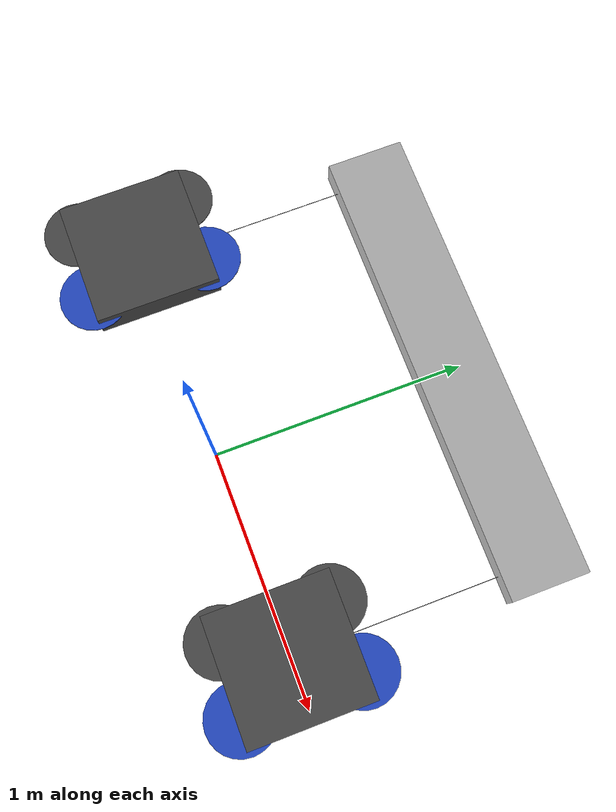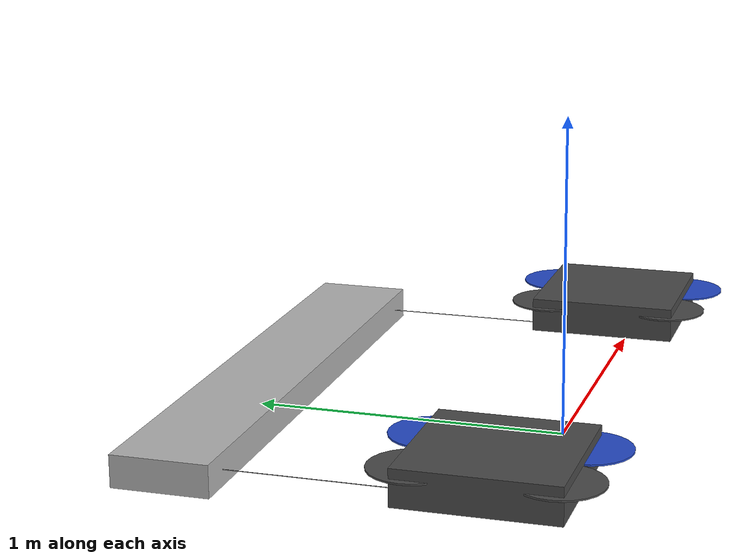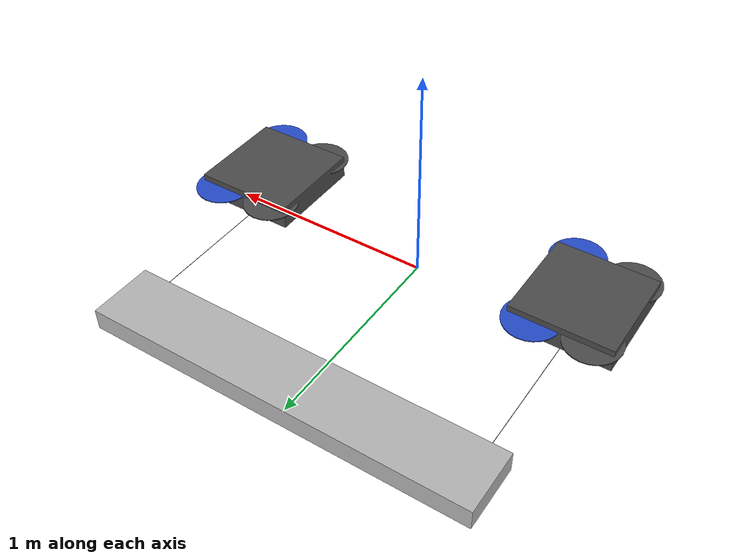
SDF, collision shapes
<sdf version='1.6'>
  <model name='multi_iris'>
    <model name='iris_0'>
      <pose> 0.8 0 0.2 0 -0 0</pose>
      <link name='base_link'>
        <pose frame=''>0 0 0 0 -0 0</pose>
        <inertial>
          <pose frame=''>0 0 0 0 -0 0</pose>
          <mass>1.5</mass>
          <inertia>
            <ixx>0.029125</ixx>
            <ixy>0</ixy>
            <ixz>0</ixz>
            <iyy>0.029125</iyy>
            <iyz>0</iyz>
            <izz>0.055225</izz>
          </inertia>
        </inertial>
        <collision name='base_link_inertia_collision'>
          <pose frame=''>0 0 0 0 -0 0</pose>
          <geometry>
            <box>
              <size>0.47 0.47 0.11</size>
            </box>
          </geometry>
          <surface>
            <contact>
              <ode>
                <min_depth>0.001</min_depth>
                <max_vel>0</max_vel>
              </ode>
            </contact>
            <friction>
              <ode/>
            </friction>
          </surface>
        </collision>
        <visual name='base_link_inertia_visual'>
          <pose frame=''>0 0 0 0 -0 0</pose>
          <geometry>
            <mesh>
              <scale>1 1 1</scale>
              <uri>model://rotors_description/meshes/iris.stl</uri>
            </mesh>
          </geometry>
          <material>
            <script>
              <name>Gazebo/DarkGrey</name>
              <uri>file://media/materials/scripts/gazebo.material</uri>
            </script>
          </material>
        </visual>
        <gravity>1</gravity>
        <velocity_decay/>
      </link>
      <link name='/imu_link'>
        <pose frame=''>0 0 0 0 -0 0</pose>
        <inertial>
          <pose frame=''>0 0 0 0 -0 0</pose>
          <mass>0.015</mass>
          <inertia>
            <ixx>1e-05</ixx>
            <ixy>0</ixy>
            <ixz>0</ixz>
            <iyy>1e-05</iyy>
            <iyz>0</iyz>
            <izz>1e-05</izz>
          </inertia>
        </inertial>
      </link>
      <joint name='/imu_joint' type='revolute'>
        <child>/imu_link</child>
        <parent>base_link</parent>
        <axis>
          <xyz>1 0 0</xyz>
          <limit>
            <lower>0</lower>
            <upper>0</upper>
            <effort>0</effort>
            <velocity>0</velocity>
          </limit>
          <dynamics>
            <spring_reference>0</spring_reference>
            <spring_stiffness>0</spring_stiffness>
          </dynamics>
          <use_parent_model_frame>1</use_parent_model_frame>
        </axis>
      </joint>
      <link name='rotor_0'>
        <pose frame=''>0.13 -0.22 0.023 0 -0 0</pose>
        <inertial>
          <pose frame=''>0 0 0 0 -0 0</pose>
          <mass>0.005</mass>
          <inertia>
            <ixx>9.75e-07</ixx>
            <ixy>0</ixy>
            <ixz>0</ixz>
            <iyy>0.000273104</iyy>
            <iyz>0</iyz>
            <izz>0.000274004</izz>
          </inertia>
        </inertial>
        <collision name='rotor_0_collision'>
          <pose frame=''>0 0 0 0 -0 0</pose>
          <geometry>
            <cylinder>
              <length>0.005</length>
              <radius>0.128</radius>
            </cylinder>
          </geometry>
          <surface>
            <contact>
              <ode/>
            </contact>
            <friction>
              <ode/>
            </friction>
          </surface>
        </collision>
        <visual name='rotor_0_visual'>
          <pose frame=''>0 0 0 0 -0 0</pose>
          <geometry>
            <mesh>
              <scale>1 1 1</scale>
              <uri>model://rotors_description/meshes/iris_prop_ccw.dae</uri>
            </mesh>
          </geometry>
          <material>
            <script>
              <name>Gazebo/Blue</name>
              <uri>file://media/materials/scripts/gazebo.material</uri>
            </script>
          </material>
        </visual>
        <gravity>1</gravity>
        <velocity_decay/>
      </link>
      <joint name='rotor_0_joint' type='revolute'>
        <child>rotor_0</child>
        <parent>base_link</parent>
        <axis>
          <xyz>0 0 1</xyz>
          <limit>
            <lower>-1e+16</lower>
            <upper>1e+16</upper>
          </limit>
          <dynamics>
            <spring_reference>0</spring_reference>
            <spring_stiffness>0</spring_stiffness>
          </dynamics>
          <use_parent_model_frame>1</use_parent_model_frame>
        </axis>
      </joint>
      <link name='rotor_1'>
        <pose frame=''>-0.13 0.2 0.023 0 -0 0</pose>
        <inertial>
          <pose frame=''>0 0 0 0 -0 0</pose>
          <mass>0.005</mass>
          <inertia>
            <ixx>9.75e-07</ixx>
            <ixy>0</ixy>
            <ixz>0</ixz>
            <iyy>0.000273104</iyy>
            <iyz>0</iyz>
            <izz>0.000274004</izz>
          </inertia>
        </inertial>
        <collision name='rotor_1_collision'>
          <pose frame=''>0 0 0 0 -0 0</pose>
          <geometry>
            <cylinder>
              <length>0.005</length>
              <radius>0.128</radius>
            </cylinder>
          </geometry>
          <surface>
            <contact>
              <ode/>
            </contact>
            <friction>
              <ode/>
            </friction>
          </surface>
        </collision>
        <visual name='rotor_1_visual'>
          <pose frame=''>0 0 0 0 -0 0</pose>
          <geometry>
            <mesh>
              <scale>1 1 1</scale>
              <uri>model://rotors_description/meshes/iris_prop_ccw.dae</uri>
            </mesh>
          </geometry>
          <material>
            <script>
              <name>Gazebo/DarkGrey</name>
              <uri>file://media/materials/scripts/gazebo.material</uri>
            </script>
          </material>
        </visual>
        <gravity>1</gravity>
        <velocity_decay/>
      </link>
      <joint name='rotor_1_joint' type='revolute'>
        <child>rotor_1</child>
        <parent>base_link</parent>
        <axis>
          <xyz>0 0 1</xyz>
          <limit>
            <lower>-1e+16</lower>
            <upper>1e+16</upper>
          </limit>
          <dynamics>
            <spring_reference>0</spring_reference>
            <spring_stiffness>0</spring_stiffness>
          </dynamics>
          <use_parent_model_frame>1</use_parent_model_frame>
        </axis>
      </joint>
      <link name='rotor_2'>
        <pose frame=''>0.13 0.22 0.023 0 -0 0</pose>
        <inertial>
          <pose frame=''>0 0 0 0 -0 0</pose>
          <mass>0.005</mass>
          <inertia>
            <ixx>9.75e-07</ixx>
            <ixy>0</ixy>
            <ixz>0</ixz>
            <iyy>0.000273104</iyy>
            <iyz>0</iyz>
            <izz>0.000274004</izz>
          </inertia>
        </inertial>
        <collision name='rotor_2_collision'>
          <pose frame=''>0 0 0 0 -0 0</pose>
          <geometry>
            <cylinder>
              <length>0.005</length>
              <radius>0.128</radius>
            </cylinder>
          </geometry>
          <surface>
            <contact>
              <ode/>
            </contact>
            <friction>
              <ode/>
            </friction>
          </surface>
        </collision>
        <visual name='rotor_2_visual'>
          <pose frame=''>0 0 0 0 -0 0</pose>
          <geometry>
            <mesh>
              <scale>1 1 1</scale>
              <uri>model://rotors_description/meshes/iris_prop_cw.dae</uri>
            </mesh>
          </geometry>
          <material>
            <script>
              <name>Gazebo/Blue</name>
              <uri>file://media/materials/scripts/gazebo.material</uri>
            </script>
          </material>
        </visual>
        <gravity>1</gravity>
        <velocity_decay/>
      </link>
      <joint name='rotor_2_joint' type='revolute'>
        <child>rotor_2</child>
        <parent>base_link</parent>
        <axis>
          <xyz>0 0 1</xyz>
          <limit>
            <lower>-1e+16</lower>
            <upper>1e+16</upper>
          </limit>
          <dynamics>
            <spring_reference>0</spring_reference>
            <spring_stiffness>0</spring_stiffness>
          </dynamics>
          <use_parent_model_frame>1</use_parent_model_frame>
        </axis>
      </joint>
      <link name='rotor_3'>
        <pose frame=''>-0.13 -0.2 0.023 0 -0 0</pose>
        <inertial>
          <pose frame=''>0 0 0 0 -0 0</pose>
          <mass>0.005</mass>
          <inertia>
            <ixx>9.75e-07</ixx>
            <ixy>0</ixy>
            <ixz>0</ixz>
            <iyy>0.000273104</iyy>
            <iyz>0</iyz>
            <izz>0.000274004</izz>
          </inertia>
        </inertial>
        <collision name='rotor_3_collision'>
          <pose frame=''>0 0 0 0 -0 0</pose>
          <geometry>
            <cylinder>
              <length>0.005</length>
              <radius>0.128</radius>
            </cylinder>
          </geometry>
          <surface>
            <contact>
              <ode/>
            </contact>
            <friction>
              <ode/>
            </friction>
          </surface>
        </collision>
        <visual name='rotor_3_visual'>
          <pose frame=''>0 0 0 0 -0 0</pose>
          <geometry>
            <mesh>
              <scale>1 1 1</scale>
              <uri>model://rotors_description/meshes/iris_prop_cw.dae</uri>
            </mesh>
          </geometry>
          <material>
            <script>
              <name>Gazebo/DarkGrey</name>
              <uri>file://media/materials/scripts/gazebo.material</uri>
            </script>
          </material>
        </visual>
        <gravity>1</gravity>
        <velocity_decay/>
      </link>
      <joint name='rotor_3_joint' type='revolute'>
        <child>rotor_3</child>
        <parent>base_link</parent>
        <axis>
          <xyz>0 0 1</xyz>
          <limit>
            <lower>-1e+16</lower>
            <upper>1e+16</upper>
          </limit>
          <dynamics>
            <spring_reference>0</spring_reference>
            <spring_stiffness>0</spring_stiffness>
          </dynamics>
          <use_parent_model_frame>1</use_parent_model_frame>
        </axis>
      </joint>
      <plugin name='rosbag' filename='libgazebo_multirotor_base_plugin.so'>
        <robotNamespace/>
        <linkName>base_link</linkName>
        <rotorVelocitySlowdownSim>10</rotorVelocitySlowdownSim>
      </plugin>
      <plugin name='front_right_motor_model' filename='libgazebo_motor_model.so'>
        <robotNamespace/>
        <jointName>rotor_0_joint</jointName>
        <linkName>rotor_0</linkName>
        <turningDirection>ccw</turningDirection>
        <timeConstantUp>0.0125</timeConstantUp>
        <timeConstantDown>0.025</timeConstantDown>
        <maxRotVelocity>1100</maxRotVelocity>
        <motorConstant>8.54858e-06</motorConstant>
        <momentConstant>0.06</momentConstant>
        <commandSubTopic>/gazebo/command/motor_speed</commandSubTopic>
        <motorNumber>0</motorNumber>
        <rotorDragCoefficient>0.000806428</rotorDragCoefficient>
        <rollingMomentCoefficient>1e-06</rollingMomentCoefficient>
        <motorSpeedPubTopic>/motor_speed/0</motorSpeedPubTopic>
        <rotorVelocitySlowdownSim>10</rotorVelocitySlowdownSim>
      </plugin>
      <plugin name='back_left_motor_model' filename='libgazebo_motor_model.so'>
        <robotNamespace/>
        <jointName>rotor_1_joint</jointName>
        <linkName>rotor_1</linkName>
        <turningDirection>ccw</turningDirection>
        <timeConstantUp>0.0125</timeConstantUp>
        <timeConstantDown>0.025</timeConstantDown>
        <maxRotVelocity>1100</maxRotVelocity>
        <motorConstant>8.54858e-06</motorConstant>
        <momentConstant>0.06</momentConstant>
        <commandSubTopic>/gazebo/command/motor_speed</commandSubTopic>
        <motorNumber>1</motorNumber>
        <rotorDragCoefficient>0.000806428</rotorDragCoefficient>
        <rollingMomentCoefficient>1e-06</rollingMomentCoefficient>
        <motorSpeedPubTopic>/motor_speed/1</motorSpeedPubTopic>
        <rotorVelocitySlowdownSim>10</rotorVelocitySlowdownSim>
      </plugin>
      <plugin name='front_left_motor_model' filename='libgazebo_motor_model.so'>
        <robotNamespace/>
        <jointName>rotor_2_joint</jointName>
        <linkName>rotor_2</linkName>
        <turningDirection>cw</turningDirection>
        <timeConstantUp>0.0125</timeConstantUp>
        <timeConstantDown>0.025</timeConstantDown>
        <maxRotVelocity>1100</maxRotVelocity>
        <motorConstant>8.54858e-06</motorConstant>
        <momentConstant>0.06</momentConstant>
        <commandSubTopic>/gazebo/command/motor_speed</commandSubTopic>
        <motorNumber>2</motorNumber>
        <rotorDragCoefficient>0.000806428</rotorDragCoefficient>
        <rollingMomentCoefficient>1e-06</rollingMomentCoefficient>
        <motorSpeedPubTopic>/motor_speed/2</motorSpeedPubTopic>
        <rotorVelocitySlowdownSim>10</rotorVelocitySlowdownSim>
      </plugin>
      <plugin name='back_right_motor_model' filename='libgazebo_motor_model.so'>
        <robotNamespace/>
        <jointName>rotor_3_joint</jointName>
        <linkName>rotor_3</linkName>
        <turningDirection>cw</turningDirection>
        <timeConstantUp>0.0125</timeConstantUp>
        <timeConstantDown>0.025</timeConstantDown>
        <maxRotVelocity>1100</maxRotVelocity>
        <motorConstant>8.54858e-06</motorConstant>
        <momentConstant>0.06</momentConstant>
        <commandSubTopic>/gazebo/command/motor_speed</commandSubTopic>
        <motorNumber>3</motorNumber>
        <rotorDragCoefficient>0.000806428</rotorDragCoefficient>
        <rollingMomentCoefficient>1e-06</rollingMomentCoefficient>
        <motorSpeedPubTopic>/motor_speed/3</motorSpeedPubTopic>
        <rotorVelocitySlowdownSim>10</rotorVelocitySlowdownSim>
      </plugin>
      <plugin name='gps_plugin' filename='libgazebo_gps_plugin.so'>
        <robotNamespace/>
        <gpsNoise>true</gpsNoise>
      </plugin>
      <plugin name='magnetometer_plugin' filename='libgazebo_magnetometer_plugin.so'>
        <robotNamespace/>
        <pubRate>20</pubRate>
        <noiseDensity>0.0004</noiseDensity>
        <randomWalk>6.4e-06</randomWalk>
        <biasCorrelationTime>600</biasCorrelationTime>
        <magTopic>/mag</magTopic>
      </plugin>
      <plugin name='barometer_plugin' filename='libgazebo_barometer_plugin.so'>
        <robotNamespace/>
        <pubRate>10</pubRate>
        <baroTopic>/baro</baroTopic>
      </plugin>
      <plugin name='mavlink_interface' filename='libgazebo_mavlink_interface.so'>
        <robotNamespace/>
        <imuSubTopic>/imu</imuSubTopic>
        <gpsSubTopic>/gps</gpsSubTopic>
        <magSubTopic>/mag</magSubTopic>
        <baroSubTopic>/baro</baroSubTopic>
        <mavlink_addr>INADDR_ANY</mavlink_addr>
        <mavlink_udp_port>14560</mavlink_udp_port>
        <mavlink_tcp_port>4560</mavlink_tcp_port>
        <serialEnabled>false</serialEnabled>
        <serialDevice>/dev/ttyACM0</serialDevice>
        <baudRate>921600</baudRate>
        <qgc_addr>INADDR_ANY</qgc_addr>
        <qgc_udp_port>14550</qgc_udp_port>
        <sdk_addr>INADDR_ANY</sdk_addr>
        <sdk_udp_port>14540</sdk_udp_port>
        <hil_mode>false</hil_mode>
        <hil_state_level>false</hil_state_level>
        <vehicle_is_tailsitter>false</vehicle_is_tailsitter>
        <send_vision_estimation>true</send_vision_estimation>
        <send_odometry>false</send_odometry>
        <enable_lockstep>true</enable_lockstep>
        <use_tcp>true</use_tcp>
        <motorSpeedCommandPubTopic>/gazebo/command/motor_speed</motorSpeedCommandPubTopic>
        <control_channels>
          <channel name='rotor1'>
            <input_index>0</input_index>
            <input_offset>0</input_offset>
            <input_scaling>1000</input_scaling>
            <zero_position_disarmed>0</zero_position_disarmed>
            <zero_position_armed>100</zero_position_armed>
            <joint_control_type>velocity</joint_control_type>
          </channel>
          <channel name='rotor2'>
            <input_index>1</input_index>
            <input_offset>0</input_offset>
            <input_scaling>1000</input_scaling>
            <zero_position_disarmed>0</zero_position_disarmed>
            <zero_position_armed>100</zero_position_armed>
            <joint_control_type>velocity</joint_control_type>
          </channel>
          <channel name='rotor3'>
            <input_index>2</input_index>
            <input_offset>0</input_offset>
            <input_scaling>1000</input_scaling>
            <zero_position_disarmed>0</zero_position_disarmed>
            <zero_position_armed>100</zero_position_armed>
            <joint_control_type>velocity</joint_control_type>
          </channel>
          <channel name='rotor4'>
            <input_index>3</input_index>
            <input_offset>0</input_offset>
            <input_scaling>1000</input_scaling>
            <zero_position_disarmed>0</zero_position_disarmed>
            <zero_position_armed>100</zero_position_armed>
            <joint_control_type>velocity</joint_control_type>
          </channel>
          <channel name='rotor5'>
            <input_index>4</input_index>
            <input_offset>1</input_offset>
            <input_scaling>324.6</input_scaling>
            <zero_position_disarmed>0</zero_position_disarmed>
            <zero_position_armed>0</zero_position_armed>
            <joint_control_type>velocity</joint_control_type>
            <joint_control_pid>
              <p>0.1</p>
              <i>0</i>
              <d>0</d>
              <iMax>0.0</iMax>
              <iMin>0.0</iMin>
              <cmdMax>2</cmdMax>
              <cmdMin>-2</cmdMin>
            </joint_control_pid>
            <joint_name>zephyr_delta_wing::propeller_joint</joint_name>
          </channel>
          <channel name='rotor6'>
            <input_index>5</input_index>
            <input_offset>0</input_offset>
            <input_scaling>0.524</input_scaling>
            <zero_position_disarmed>0</zero_position_disarmed>
            <zero_position_armed>0</zero_position_armed>
            <joint_control_type>position</joint_control_type>
            <joint_name>zephyr_delta_wing::flap_left_joint</joint_name>
            <joint_control_pid>
              <p>10.0</p>
              <i>0</i>
              <d>0</d>
              <iMax>0</iMax>
              <iMin>0</iMin>
              <cmdMax>20</cmdMax>
              <cmdMin>-20</cmdMin>
            </joint_control_pid>
          </channel>
          <channel name='rotor7'>
            <input_index>6</input_index>
            <input_offset>0</input_offset>
            <input_scaling>0.524</input_scaling>
            <zero_position_disarmed>0</zero_position_disarmed>
            <zero_position_armed>0</zero_position_armed>
            <joint_control_type>position</joint_control_type>
            <joint_name>zephyr_delta_wing::flap_right_joint</joint_name>
            <joint_control_pid>
              <p>10.0</p>
              <i>0</i>
              <d>0</d>
              <iMax>0</iMax>
              <iMin>0</iMin>
              <cmdMax>20</cmdMax>
              <cmdMin>-20</cmdMin>
            </joint_control_pid>
          </channel>
          <channel name='rotor8'>
            <input_index>7</input_index>
            <input_offset>0</input_offset>
            <input_scaling>0.524</input_scaling>
            <zero_position_disarmed>0</zero_position_disarmed>
            <zero_position_armed>0</zero_position_armed>
            <joint_control_type>position</joint_control_type>
          </channel>
        </control_channels>
      </plugin>
      <static>0</static>
      <plugin name='rotors_gazebo_imu_plugin' filename='libgazebo_imu_plugin.so'>
        <robotNamespace/>
        <linkName>/imu_link</linkName>
        <imuTopic>/imu</imuTopic>
        <gyroscopeNoiseDensity>0.0003394</gyroscopeNoiseDensity>
        <gyroscopeRandomWalk>3.8785e-05</gyroscopeRandomWalk>
        <gyroscopeBiasCorrelationTime>1000.0</gyroscopeBiasCorrelationTime>
        <gyroscopeTurnOnBiasSigma>0.0087</gyroscopeTurnOnBiasSigma>
        <accelerometerNoiseDensity>0.004</accelerometerNoiseDensity>
        <accelerometerRandomWalk>0.006</accelerometerRandomWalk>
        <accelerometerBiasCorrelationTime>300.0</accelerometerBiasCorrelationTime>
        <accelerometerTurnOnBiasSigma>0.196</accelerometerTurnOnBiasSigma>
      </plugin>
      <plugin name="p3d_base_controller" filename="libgazebo_ros_p3d.so">
        <alwaysOn>true</alwaysOn>
        <updateRate>100.0</updateRate>
        <bodyName>base_link</bodyName>
        <topicName>gazebo_ground_truth_UAV0</topicName>
        <gaussianNoise>0</gaussianNoise>
        <frameName>/map</frameName>
        <xyzOffsets>0 0 0</xyzOffsets>
        <rpyOffsets>0 0 0</rpyOffsets>
      </plugin>
    </model>

    <model name='iris_1'>
      <pose>-0.8 0 0.2 0 -0 0</pose>
      <link name='base_link'>
        <pose frame=''>0 0 0 0 -0 0</pose>
        <inertial>
          <pose frame=''>0 0 0 0 -0 0</pose>
          <mass>1.5</mass>
          <inertia>
            <ixx>0.029125</ixx>
            <ixy>0</ixy>
            <ixz>0</ixz>
            <iyy>0.029125</iyy>
            <iyz>0</iyz>
            <izz>0.055225</izz>
          </inertia>
        </inertial>
        <collision name='base_link_inertia_collision'>
          <pose frame=''>0 0 0 0 -0 0</pose>
          <geometry>
            <box>
              <size>0.47 0.47 0.11</size>
            </box>
          </geometry>
          <surface>
            <contact>
              <ode>
                <min_depth>0.001</min_depth>
                <max_vel>0</max_vel>
              </ode>
            </contact>
            <friction>
              <ode/>
            </friction>
          </surface>
        </collision>
        <visual name='base_link_inertia_visual'>
          <pose frame=''>0 0 0 0 -0 0</pose>
          <geometry>
            <mesh>
              <scale>1 1 1</scale>
              <uri>model://rotors_description/meshes/iris.stl</uri>
            </mesh>
          </geometry>
          <material>
            <script>
              <name>Gazebo/DarkGrey</name>
              <uri>file://media/materials/scripts/gazebo.material</uri>
            </script>
          </material>
        </visual>
        <gravity>1</gravity>
        <velocity_decay/>
      </link>
      <link name='/imu_link'>
        <pose frame=''>0 0 0 0 -0 0</pose>
        <inertial>
          <pose frame=''>0 0 0 0 -0 0</pose>
          <mass>0.015</mass>
          <inertia>
            <ixx>1e-05</ixx>
            <ixy>0</ixy>
            <ixz>0</ixz>
            <iyy>1e-05</iyy>
            <iyz>0</iyz>
            <izz>1e-05</izz>
          </inertia>
        </inertial>
      </link>
      <joint name='/imu_joint' type='revolute'>
        <child>/imu_link</child>
        <parent>base_link</parent>
        <axis>
          <xyz>1 0 0</xyz>
          <limit>
            <lower>0</lower>
            <upper>0</upper>
            <effort>0</effort>
            <velocity>0</velocity>
          </limit>
          <dynamics>
            <spring_reference>0</spring_reference>
            <spring_stiffness>0</spring_stiffness>
          </dynamics>
          <use_parent_model_frame>1</use_parent_model_frame>
        </axis>
      </joint>
      <link name='rotor_0'>
        <pose frame=''>0.13 -0.22 0.023 0 -0 0</pose>
        <inertial>
          <pose frame=''>0 0 0 0 -0 0</pose>
          <mass>0.005</mass>
          <inertia>
            <ixx>9.75e-07</ixx>
            <ixy>0</ixy>
            <ixz>0</ixz>
            <iyy>0.000273104</iyy>
            <iyz>0</iyz>
            <izz>0.000274004</izz>
          </inertia>
        </inertial>
        <collision name='rotor_0_collision'>
          <pose frame=''>0 0 0 0 -0 0</pose>
          <geometry>
            <cylinder>
              <length>0.005</length>
              <radius>0.128</radius>
            </cylinder>
          </geometry>
          <surface>
            <contact>
              <ode/>
            </contact>
            <friction>
              <ode/>
            </friction>
          </surface>
        </collision>
        <visual name='rotor_0_visual'>
          <pose frame=''>0 0 0 0 -0 0</pose>
          <geometry>
            <mesh>
              <scale>1 1 1</scale>
              <uri>model://rotors_description/meshes/iris_prop_ccw.dae</uri>
            </mesh>
          </geometry>
          <material>
            <script>
              <name>Gazebo/Blue</name>
              <uri>file://media/materials/scripts/gazebo.material</uri>
            </script>
          </material>
        </visual>
        <gravity>1</gravity>
        <velocity_decay/>
      </link>
      <joint name='rotor_0_joint' type='revolute'>
        <child>rotor_0</child>
        <parent>base_link</parent>
        <axis>
          <xyz>0 0 1</xyz>
          <limit>
            <lower>-1e+16</lower>
            <upper>1e+16</upper>
          </limit>
          <dynamics>
            <spring_reference>0</spring_reference>
            <spring_stiffness>0</spring_stiffness>
          </dynamics>
          <use_parent_model_frame>1</use_parent_model_frame>
        </axis>
      </joint>
      <link name='rotor_1'>
        <pose frame=''>-0.13 0.2 0.023 0 -0 0</pose>
        <inertial>
          <pose frame=''>0 0 0 0 -0 0</pose>
          <mass>0.005</mass>
          <inertia>
            <ixx>9.75e-07</ixx>
            <ixy>0</ixy>
            <ixz>0</ixz>
            <iyy>0.000273104</iyy>
            <iyz>0</iyz>
            <izz>0.000274004</izz>
          </inertia>
        </inertial>
        <collision name='rotor_1_collision'>
          <pose frame=''>0 0 0 0 -0 0</pose>
          <geometry>
            <cylinder>
              <length>0.005</length>
              <radius>0.128</radius>
            </cylinder>
          </geometry>
          <surface>
            <contact>
              <ode/>
            </contact>
            <friction>
              <ode/>
            </friction>
          </surface>
        </collision>
        <visual name='rotor_1_visual'>
          <pose frame=''>0 0 0 0 -0 0</pose>
          <geometry>
            <mesh>
              <scale>1 1 1</scale>
              <uri>model://rotors_description/meshes/iris_prop_ccw.dae</uri>
            </mesh>
          </geometry>
          <material>
            <script>
              <name>Gazebo/DarkGrey</name>
              <uri>file://media/materials/scripts/gazebo.material</uri>
            </script>
          </material>
        </visual>
        <gravity>1</gravity>
        <velocity_decay/>
      </link>
      <joint name='rotor_1_joint' type='revolute'>
        <child>rotor_1</child>
        <parent>base_link</parent>
        <axis>
          <xyz>0 0 1</xyz>
          <limit>
            <lower>-1e+16</lower>
            <upper>1e+16</upper>
          </limit>
          <dynamics>
            <spring_reference>0</spring_reference>
            <spring_stiffness>0</spring_stiffness>
          </dynamics>
          <use_parent_model_frame>1</use_parent_model_frame>
        </axis>
      </joint>
      <link name='rotor_2'>
        <pose frame=''>0.13 0.22 0.023 0 -0 0</pose>
        <inertial>
          <pose frame=''>0 0 0 0 -0 0</pose>
          <mass>0.005</mass>
          <inertia>
            <ixx>9.75e-07</ixx>
            <ixy>0</ixy>
            <ixz>0</ixz>
            <iyy>0.000273104</iyy>
            <iyz>0</iyz>
            <izz>0.000274004</izz>
          </inertia>
        </inertial>
        <collision name='rotor_2_collision'>
          <pose frame=''>0 0 0 0 -0 0</pose>
          <geometry>
            <cylinder>
              <length>0.005</length>
              <radius>0.128</radius>
            </cylinder>
          </geometry>
          <surface>
            <contact>
              <ode/>
            </contact>
            <friction>
              <ode/>
            </friction>
          </surface>
        </collision>
        <visual name='rotor_2_visual'>
          <pose frame=''>0 0 0 0 -0 0</pose>
          <geometry>
            <mesh>
              <scale>1 1 1</scale>
              <uri>model://rotors_description/meshes/iris_prop_cw.dae</uri>
            </mesh>
          </geometry>
          <material>
            <script>
              <name>Gazebo/Blue</name>
              <uri>file://media/materials/scripts/gazebo.material</uri>
            </script>
          </material>
        </visual>
        <gravity>1</gravity>
        <velocity_decay/>
      </link>
      <joint name='rotor_2_joint' type='revolute'>
        <child>rotor_2</child>
        <parent>base_link</parent>
        <axis>
          <xyz>0 0 1</xyz>
          <limit>
            <lower>-1e+16</lower>
            <upper>1e+16</upper>
          </limit>
          <dynamics>
            <spring_reference>0</spring_reference>
            <spring_stiffness>0</spring_stiffness>
          </dynamics>
          <use_parent_model_frame>1</use_parent_model_frame>
        </axis>
      </joint>
      <link name='rotor_3'>
        <pose frame=''>-0.13 -0.2 0.023 0 -0 0</pose>
        <inertial>
          <pose frame=''>0 0 0 0 -0 0</pose>
          <mass>0.005</mass>
          <inertia>
            <ixx>9.75e-07</ixx>
            <ixy>0</ixy>
            <ixz>0</ixz>
            <iyy>0.000273104</iyy>
            <iyz>0</iyz>
            <izz>0.000274004</izz>
          </inertia>
        </inertial>
        <collision name='rotor_3_collision'>
          <pose frame=''>0 0 0 0 -0 0</pose>
          <geometry>
            <cylinder>
              <length>0.005</length>
              <radius>0.128</radius>
            </cylinder>
          </geometry>
          <surface>
            <contact>
              <ode/>
            </contact>
            <friction>
              <ode/>
            </friction>
          </surface>
        </collision>
        <visual name='rotor_3_visual'>
          <pose frame=''>0 0 0 0 -0 0</pose>
          <geometry>
            <mesh>
              <scale>1 1 1</scale>
              <uri>model://rotors_description/meshes/iris_prop_cw.dae</uri>
            </mesh>
          </geometry>
          <material>
            <script>
              <name>Gazebo/DarkGrey</name>
              <uri>file://media/materials/scripts/gazebo.material</uri>
            </script>
          </material>
        </visual>
        <gravity>1</gravity>
        <velocity_decay/>
      </link>
      <joint name='rotor_3_joint' type='revolute'>
        <child>rotor_3</child>
        <parent>base_link</parent>
        <axis>
          <xyz>0 0 1</xyz>
          <limit>
            <lower>-1e+16</lower>
            <upper>1e+16</upper>
          </limit>
          <dynamics>
            <spring_reference>0</spring_reference>
            <spring_stiffness>0</spring_stiffness>
          </dynamics>
          <use_parent_model_frame>1</use_parent_model_frame>
        </axis>
      </joint>
      <plugin name='rosbag' filename='libgazebo_multirotor_base_plugin.so'>
        <robotNamespace/>
        <linkName>base_link</linkName>
        <rotorVelocitySlowdownSim>10</rotorVelocitySlowdownSim>
      </plugin>
      <plugin name='front_right_motor_model' filename='libgazebo_motor_model.so'>
        <robotNamespace/>
        <jointName>rotor_0_joint</jointName>
        <linkName>rotor_0</linkName>
        <turningDirection>ccw</turningDirection>
        <timeConstantUp>0.0125</timeConstantUp>
        <timeConstantDown>0.025</timeConstantDown>
        <maxRotVelocity>1100</maxRotVelocity>
        <motorConstant>8.54858e-06</motorConstant>
        <momentConstant>0.06</momentConstant>
        <commandSubTopic>/gazebo/command/motor_speed</commandSubTopic>
        <motorNumber>0</motorNumber>
        <rotorDragCoefficient>0.000806428</rotorDragCoefficient>
        <rollingMomentCoefficient>1e-06</rollingMomentCoefficient>
        <motorSpeedPubTopic>/motor_speed/0</motorSpeedPubTopic>
        <rotorVelocitySlowdownSim>10</rotorVelocitySlowdownSim>
      </plugin>
      <plugin name='back_left_motor_model' filename='libgazebo_motor_model.so'>
        <robotNamespace/>
        <jointName>rotor_1_joint</jointName>
        <linkName>rotor_1</linkName>
        <turningDirection>ccw</turningDirection>
        <timeConstantUp>0.0125</timeConstantUp>
        <timeConstantDown>0.025</timeConstantDown>
        <maxRotVelocity>1100</maxRotVelocity>
        <motorConstant>8.54858e-06</motorConstant>
        <momentConstant>0.06</momentConstant>
        <commandSubTopic>/gazebo/command/motor_speed</commandSubTopic>
        <motorNumber>1</motorNumber>
        <rotorDragCoefficient>0.000806428</rotorDragCoefficient>
        <rollingMomentCoefficient>1e-06</rollingMomentCoefficient>
        <motorSpeedPubTopic>/motor_speed/1</motorSpeedPubTopic>
        <rotorVelocitySlowdownSim>10</rotorVelocitySlowdownSim>
      </plugin>
      <plugin name='front_left_motor_model' filename='libgazebo_motor_model.so'>
        <robotNamespace/>
        <jointName>rotor_2_joint</jointName>
        <linkName>rotor_2</linkName>
        <turningDirection>cw</turningDirection>
        <timeConstantUp>0.0125</timeConstantUp>
        <timeConstantDown>0.025</timeConstantDown>
        <maxRotVelocity>1100</maxRotVelocity>
        <motorConstant>8.54858e-06</motorConstant>
        <momentConstant>0.06</momentConstant>
        <commandSubTopic>/gazebo/command/motor_speed</commandSubTopic>
        <motorNumber>2</motorNumber>
        <rotorDragCoefficient>0.000806428</rotorDragCoefficient>
        <rollingMomentCoefficient>1e-06</rollingMomentCoefficient>
        <motorSpeedPubTopic>/motor_speed/2</motorSpeedPubTopic>
        <rotorVelocitySlowdownSim>10</rotorVelocitySlowdownSim>
      </plugin>
      <plugin name='back_right_motor_model' filename='libgazebo_motor_model.so'>
        <robotNamespace/>
        <jointName>rotor_3_joint</jointName>
        <linkName>rotor_3</linkName>
        <turningDirection>cw</turningDirection>
        <timeConstantUp>0.0125</timeConstantUp>
        <timeConstantDown>0.025</timeConstantDown>
        <maxRotVelocity>1100</maxRotVelocity>
        <motorConstant>8.54858e-06</motorConstant>
        <momentConstant>0.06</momentConstant>
        <commandSubTopic>/gazebo/command/motor_speed</commandSubTopic>
        <motorNumber>3</motorNumber>
        <rotorDragCoefficient>0.000806428</rotorDragCoefficient>
        <rollingMomentCoefficient>1e-06</rollingMomentCoefficient>
        <motorSpeedPubTopic>/motor_speed/3</motorSpeedPubTopic>
        <rotorVelocitySlowdownSim>10</rotorVelocitySlowdownSim>
      </plugin>
      <plugin name='gps_plugin' filename='libgazebo_gps_plugin.so'>
        <robotNamespace/>
        <gpsNoise>true</gpsNoise>
      </plugin>
      <plugin name='magnetometer_plugin' filename='libgazebo_magnetometer_plugin.so'>
        <robotNamespace/>
        <pubRate>20</pubRate>
        <noiseDensity>0.0004</noiseDensity>
        <randomWalk>6.4e-06</randomWalk>
        <biasCorrelationTime>600</biasCorrelationTime>
        <magTopic>/mag</magTopic>
      </plugin>
      <plugin name='barometer_plugin' filename='libgazebo_barometer_plugin.so'>
        <robotNamespace/>
        <pubRate>10</pubRate>
        <baroTopic>/baro</baroTopic>
      </plugin>
      <plugin name='mavlink_interface' filename='libgazebo_mavlink_interface.so'>
        <robotNamespace/>
        <imuSubTopic>/imu</imuSubTopic>
        <gpsSubTopic>/gps</gpsSubTopic>
        <magSubTopic>/mag</magSubTopic>
        <baroSubTopic>/baro</baroSubTopic>
        <mavlink_addr>INADDR_ANY</mavlink_addr>
        <mavlink_udp_port>14561</mavlink_udp_port>
        <mavlink_tcp_port>4561</mavlink_tcp_port>
        <serialEnabled>false</serialEnabled>
        <serialDevice>/dev/ttyACM0</serialDevice>
        <baudRate>921600</baudRate>
        <qgc_addr>INADDR_ANY</qgc_addr>
        <qgc_udp_port>14550</qgc_udp_port>
        <sdk_addr>INADDR_ANY</sdk_addr>
        <sdk_udp_port>14540</sdk_udp_port>
        <hil_mode>false</hil_mode>
        <hil_state_level>false</hil_state_level>
        <vehicle_is_tailsitter>false</vehicle_is_tailsitter>
        <send_vision_estimation>true</send_vision_estimation>
        <send_odometry>false</send_odometry>
        <enable_lockstep>true</enable_lockstep>
        <use_tcp>true</use_tcp>
        <motorSpeedCommandPubTopic>/gazebo/command/motor_speed</motorSpeedCommandPubTopic>
        <control_channels>
          <channel name='rotor1'>
            <input_index>0</input_index>
            <input_offset>0</input_offset>
            <input_scaling>1000</input_scaling>
            <zero_position_disarmed>0</zero_position_disarmed>
            <zero_position_armed>100</zero_position_armed>
            <joint_control_type>velocity</joint_control_type>
          </channel>
          <channel name='rotor2'>
            <input_index>1</input_index>
            <input_offset>0</input_offset>
            <input_scaling>1000</input_scaling>
            <zero_position_disarmed>0</zero_position_disarmed>
            <zero_position_armed>100</zero_position_armed>
            <joint_control_type>velocity</joint_control_type>
          </channel>
          <channel name='rotor3'>
            <input_index>2</input_index>
            <input_offset>0</input_offset>
            <input_scaling>1000</input_scaling>
            <zero_position_disarmed>0</zero_position_disarmed>
            <zero_position_armed>100</zero_position_armed>
            <joint_control_type>velocity</joint_control_type>
          </channel>
          <channel name='rotor4'>
            <input_index>3</input_index>
            <input_offset>0</input_offset>
            <input_scaling>1000</input_scaling>
            <zero_position_disarmed>0</zero_position_disarmed>
            <zero_position_armed>100</zero_position_armed>
            <joint_control_type>velocity</joint_control_type>
          </channel>
          <channel name='rotor5'>
            <input_index>4</input_index>
            <input_offset>1</input_offset>
            <input_scaling>324.6</input_scaling>
            <zero_position_disarmed>0</zero_position_disarmed>
            <zero_position_armed>0</zero_position_armed>
            <joint_control_type>velocity</joint_control_type>
            <joint_control_pid>
              <p>0.1</p>
              <i>0</i>
              <d>0</d>
              <iMax>0.0</iMax>
              <iMin>0.0</iMin>
              <cmdMax>2</cmdMax>
              <cmdMin>-2</cmdMin>
            </joint_control_pid>
            <joint_name>zephyr_delta_wing::propeller_joint</joint_name>
          </channel>
          <channel name='rotor6'>
            <input_index>5</input_index>
            <input_offset>0</input_offset>
            <input_scaling>0.524</input_scaling>
            <zero_position_disarmed>0</zero_position_disarmed>
            <zero_position_armed>0</zero_position_armed>
            <joint_control_type>position</joint_control_type>
            <joint_name>zephyr_delta_wing::flap_left_joint</joint_name>
            <joint_control_pid>
              <p>10.0</p>
              <i>0</i>
              <d>0</d>
              <iMax>0</iMax>
              <iMin>0</iMin>
              <cmdMax>20</cmdMax>
              <cmdMin>-20</cmdMin>
            </joint_control_pid>
          </channel>
          <channel name='rotor7'>
            <input_index>6</input_index>
            <input_offset>0</input_offset>
            <input_scaling>0.524</input_scaling>
            <zero_position_disarmed>0</zero_position_disarmed>
            <zero_position_armed>0</zero_position_armed>
            <joint_control_type>position</joint_control_type>
            <joint_name>zephyr_delta_wing::flap_right_joint</joint_name>
            <joint_control_pid>
              <p>10.0</p>
              <i>0</i>
              <d>0</d>
              <iMax>0</iMax>
              <iMin>0</iMin>
              <cmdMax>20</cmdMax>
              <cmdMin>-20</cmdMin>
            </joint_control_pid>
          </channel>
          <channel name='rotor8'>
            <input_index>7</input_index>
            <input_offset>0</input_offset>
            <input_scaling>0.524</input_scaling>
            <zero_position_disarmed>0</zero_position_disarmed>
            <zero_position_armed>0</zero_position_armed>
            <joint_control_type>position</joint_control_type>
          </channel>
        </control_channels>
      </plugin>
      <static>0</static>
      <plugin name='rotors_gazebo_imu_plugin' filename='libgazebo_imu_plugin.so'>
        <robotNamespace/>
        <linkName>/imu_link</linkName>
        <imuTopic>/imu</imuTopic>
        <gyroscopeNoiseDensity>0.0003394</gyroscopeNoiseDensity>
        <gyroscopeRandomWalk>3.8785e-05</gyroscopeRandomWalk>
        <gyroscopeBiasCorrelationTime>1000.0</gyroscopeBiasCorrelationTime>
        <gyroscopeTurnOnBiasSigma>0.0087</gyroscopeTurnOnBiasSigma>
        <accelerometerNoiseDensity>0.004</accelerometerNoiseDensity>
        <accelerometerRandomWalk>0.006</accelerometerRandomWalk>
        <accelerometerBiasCorrelationTime>300.0</accelerometerBiasCorrelationTime>
        <accelerometerTurnOnBiasSigma>0.196</accelerometerTurnOnBiasSigma>
      </plugin>
      <plugin name="p3d_base_controller" filename="libgazebo_ros_p3d.so">
        <alwaysOn>true</alwaysOn>
        <updateRate>100.0</updateRate>
        <bodyName>base_link</bodyName>
        <topicName>gazebo_ground_truth_UAV1</topicName>
        <gaussianNoise>0</gaussianNoise>
        <frameName>/map</frameName>
        <xyzOffsets>0 0 0</xyzOffsets>
        <rpyOffsets>0 0 0</rpyOffsets>
      </plugin>
    </model>

<model name='payload'>
    <allow_auto_disable>false</allow_auto_disable>
    <pose>0 0.95 0.1 1.57079632679 0 0</pose>
    <link name='payload_link'>
      <velocity_decay>
         <linear>0.0</linear>
         <angular>0.0</angular>
      </velocity_decay>
      <gravity>1</gravity>
      <inertial>
        <mass>0.7</mass>
        <inertia>
          <ixx>0.0408</ixx>
          <ixy>0</ixy>
          <ixz>0</ixz>
          <iyy>0.1</iyy>
          <iyz>0</iyz>
          <izz>0.1</izz>
        </inertia>
      </inertial>
      <collision name='collision'>
        <pose>0 0 0 0 -0 0</pose>
        <geometry>
          <box>
            <size>1.8 0.1 0.3</size>
          </box>
        </geometry>
      </collision>
      <visual name='visual'>
        <pose>0 0 0 0 -0 0</pose>
        <geometry>
          <box>
            <size>1.8 0.1 0.3</size>
          </box>
        </geometry>
          <script>
            <name>Gazebo/White</name>
            <uri>file://media/materials/scripts/gazebo.material</uri>
          </script>
      </visual>
    </link>
    <plugin name="p3d_base_controller" filename="libgazebo_ros_p3d.so">
      <alwaysOn>true</alwaysOn>
      <updateRate>100.0</updateRate>
      <bodyName>payload_link</bodyName>
      <topicName>gazebo_ground_truth_Payload</topicName>
      <gaussianNoise>0</gaussianNoise>
      <frameName>/map</frameName>
      <xyzOffsets>0 0 0</xyzOffsets>
      <rpyOffsets>0 0 0</rpyOffsets>
    </plugin>
  </model>

<model name='cable_0'>
  <pose>0.8 0.4 0.1 1.57079632679 0 0</pose>
  <link name='cable_link_0'>
    <kinematic>0</kinematic>
    <inertial>
      <mass>1e-3</mass>
      <inertia>
        <ixx>0.0000508</ixx>
        <ixy>0</ixy>
        <ixz>0</ixz>
        <iyy>0.00002351042</iyy>
        <iyz>0</iyz>
        <izz>0.000023</izz>
      </inertia>
    </inertial>
    <collision name='tether_collision'>
      <pose>0 0 0 0 -0 0</pose>
      <geometry>
        <cylinder>
          <radius>0.001</radius>
          <length>0.8</length>
        </cylinder>
      </geometry>
      <friction>
        <ode>
          <mu>0.00</mu>
          <mu2>0.00</mu2>
        </ode>
      </friction>
    </collision>
    <visual name='tether_visual'>
      <pose>0 0 0 0 0 0</pose>
      <geometry>
        <cylinder>
          <radius>0.001</radius>
          <length>0.8</length>
        </cylinder>
      </geometry>
      <material>
        <script>
          <name>Gazebo/Black</name>
          <uri>file://media/materials/scripts/gazebo.material</uri>
        </script>
      </material>
    </visual>
  </link>
</model>

<model name='cable_1'>
  <pose>-0.8 0.4 0.1 1.57079632679 0 0</pose>
  <link name='cable_link_1'>
    <kinematic>0</kinematic>
    <inertial>
      <mass>1e-3</mass>
      <inertia>
        <ixx>0.0000508</ixx>
        <ixy>0</ixy>
        <ixz>0</ixz>
        <iyy>0.00002351042</iyy>
        <iyz>0</iyz>
        <izz>0.000023</izz>
      </inertia>
    </inertial>
    <collision name='tether_collision'>
      <pose>0 0 0 0 -0 0</pose>
      <geometry>
        <cylinder>
          <radius>0.001</radius>
          <length>0.8</length>
        </cylinder>
      </geometry>
      <friction>
        <ode>
          <mu>0.00</mu>
          <mu2>0.00</mu2>
        </ode>
      </friction>
    </collision>
    <visual name='tether_visual'>
      <pose>0 0 0 0 0 0</pose>
      <geometry>
        <cylinder>
          <radius>0.001</radius>
          <length>0.8</length>
        </cylinder>
      </geometry>
      <material>
        <script>
          <name>Gazebo/Black</name>
          <uri>file://media/materials/scripts/gazebo.material</uri>
        </script>
      </material>
    </visual>
  </link>
</model>

<joint name='cable_to_payload_0' type='ball'>
    <parent>payload::payload_link</parent>
    <child>cable_0::cable_link_0</child>
    <pose>0 0 -0.4 0 -0 0</pose>
</joint>

<joint name='cable_to_payload_1' type='ball'>
    <parent>payload::payload_link</parent>
    <child>cable_1::cable_link_1</child>
    <pose>0 0 -0.4 0 -0 0</pose>
</joint>

<joint name='cable_to_iris_0' type='ball'>
    <parent>iris_0::base_link</parent>
    <child>cable_0::cable_link_0</child>
    <pose>0 0 0.4 0 -0 0</pose>
</joint>

  <joint name='cable_to_iris_1' type='ball'>
    <parent>iris_1::base_link</parent>
    <child>cable_1::cable_link_1</child>
    <pose>0 0 0.4 0 -0 0</pose>
  </joint>

  </model>
</sdf>
